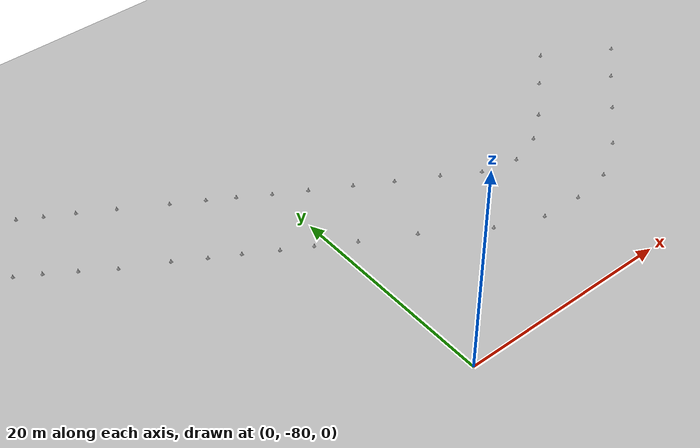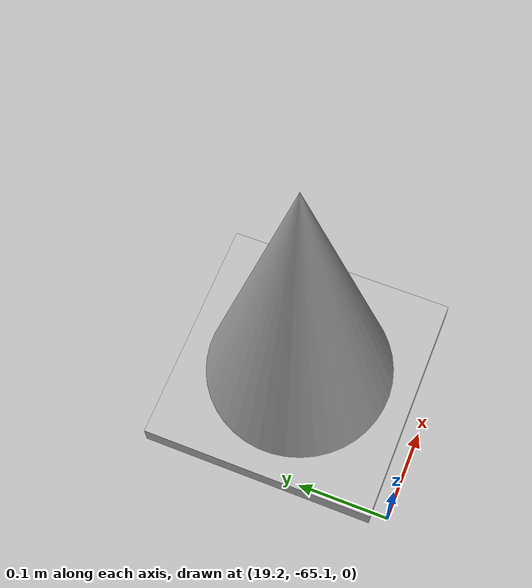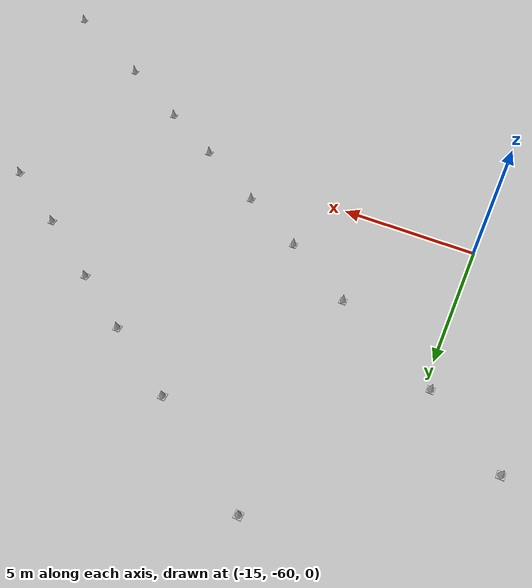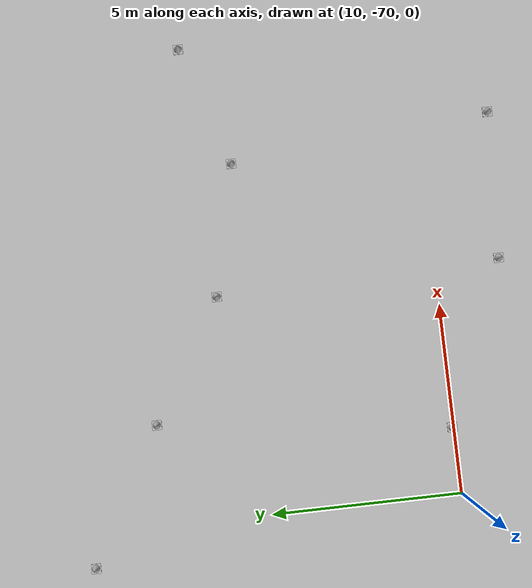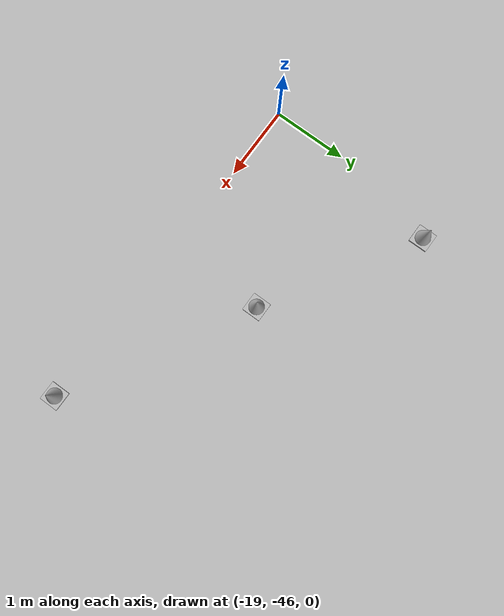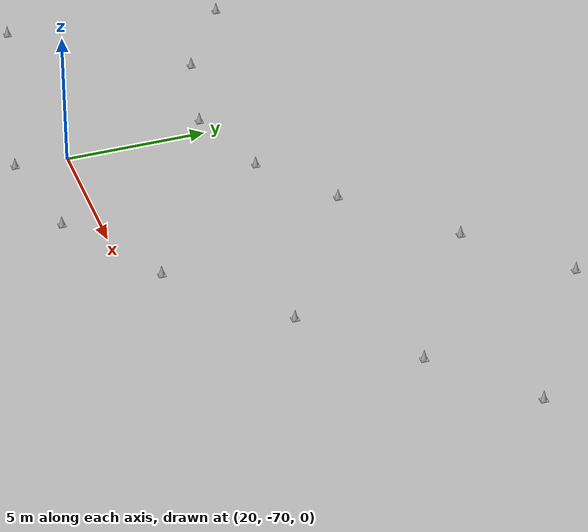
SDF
<sdf version='1.10'>
  <world name='phoenix_world'>
    <physics name='1ms' type='ignored'>
      <max_step_size>0.001</max_step_size>
      <real_time_factor>1</real_time_factor>
      <real_time_update_rate>1000</real_time_update_rate>
    </physics>
    <plugin name='ignition::gazebo::systems::Physics' filename='ignition-gazebo-physics-system'/>
    <plugin name='ignition::gazebo::systems::Sensors' filename='ignition-gazebo-sensors-system'>
      <render_engine>ogre2</render_engine>
    </plugin>
    <plugin name='ignition::gazebo::systems::UserCommands' filename='ignition-gazebo-user-commands-system'/>
    <plugin name='ignition::gazebo::systems::SceneBroadcaster' filename='ignition-gazebo-scene-broadcaster-system'/>
    <plugin name='ignition::gazebo::systems::Contact' filename='ignition-gazebo-contact-system'/>
    <plugin name='ignition::gazebo::systems::Imu' filename='libignition-gazebo-imu-system.so'/>
    <gravity>0 0 -9.8000000000000007</gravity>
    <magnetic_field>5.5644999999999998e-06 2.2875799999999999e-05 -4.2388400000000002e-05</magnetic_field>
    <atmosphere type='adiabatic'/>
    <scene>
      <ambient>0.400000006 0.400000006 0.400000006 1</ambient>
      <background>0.699999988 0.699999988 0.699999988 1</background>
      <shadows>true</shadows>
    </scene>
    <model name='ground_plane'>
      <static>true</static>
      <link name='link'>
        <visual name='visual'>
          <geometry>
            <mesh>
              <uri>../models/purdue_track/track.dae</uri>
            </mesh>
          </geometry>
        </visual>
        <collision name='collision'>
          <geometry>
            <mesh>
              <uri>../models/purdue_track/track.dae</uri>
            </mesh>
          </geometry>
        </collision>
        <pose>0 0 0 0 0 0</pose>
        <inertial>
          <pose>0 0 0 0 0 0</pose>
          <mass>1</mass>
          <inertia>
            <ixx>1</ixx>
            <ixy>0</ixy>
            <ixz>0</ixz>
            <iyy>1</iyy>
            <iyz>0</iyz>
            <izz>1</izz>
          </inertia>
        </inertial>
        <enable_wind>false</enable_wind>
      </link>
      <pose>-2.7981400000000001 -3.7684500000000001 0 0 0 0</pose>
      <static>true</static>
      <self_collide>false</self_collide>
    </model>

    <model name='cone1_1'>
      <static>true</static>
      <link name='cone'>
        <visual name='visual'>
          <geometry>
            <mesh>
              <uri>../models/isc_cone/cone.dae</uri>
            </mesh>
          </geometry>
        </visual>
        <collision name='collision'>
          <geometry>
            <mesh>
              <uri>../models/isc_cone/Cone.STL</uri>
            </mesh>
          </geometry>
        </collision>
        <pose>0 0 0 0 0 0</pose>
        <inertial>
          <pose>0 0 0 0 0 0</pose>
          <mass>1</mass>
          <inertia>
            <ixx>1</ixx>
            <ixy>0</ixy>
            <ixz>0</ixz>
            <iyy>1</iyy>
            <iyz>0</iyz>
            <izz>1</izz>
          </inertia>
        </inertial>
        <enable_wind>false</enable_wind>
      </link>
      <pose>-22.326957755397821 -49.315770699667269 -5.7995219328333481e-07 0.00024197632301167047 -2.4381442667617083e-05 -2.9497749163512602e-09</pose>
      <static>true</static>
      <self_collide>false</self_collide>
    </model>
    <model name='cone1_1_1'>
      <static>true</static>
      <link name='cone'>
        <visual name='visual'>
          <geometry>
            <mesh>
              <uri>../models/isc_cone/cone.dae</uri>
            </mesh>
          </geometry>
        </visual>
        <collision name='collision'>
          <geometry>
            <mesh>
              <uri>../models/isc_cone/Cone.STL</uri>
            </mesh>
          </geometry>
        </collision>
        <pose>0 0 0 0 0 0</pose>
        <inertial>
          <pose>0 0 0 0 0 0</pose>
          <mass>1</mass>
          <inertia>
            <ixx>1</ixx>
            <ixy>0</ixy>
            <ixz>0</ixz>
            <iyy>1</iyy>
            <iyz>0</iyz>
            <izz>1</izz>
          </inertia>
        </inertial>
        <enable_wind>false</enable_wind>
      </link>
      <pose>-20.295858248345464 -50.544541296695002 -5.7995173796751163e-07 0.00024197632196184537 -2.4381468218629035e-05 -2.9497716957905055e-09</pose>
      <static>true</static>
      <self_collide>false</self_collide>
    </model>
    <model name='cone1_1_2'>
      <static>true</static>
      <link name='cone'>
        <visual name='visual'>
          <geometry>
            <mesh>
              <uri>../models/isc_cone/cone.dae</uri>
            </mesh>
          </geometry>
        </visual>
        <collision name='collision'>
          <geometry>
            <mesh>
              <uri>../models/isc_cone/Cone.STL</uri>
            </mesh>
          </geometry>
        </collision>
        <pose>0 0 0 0 0 0</pose>
        <inertial>
          <pose>0 0 0 0 0 0</pose>
          <mass>1</mass>
          <inertia>
            <ixx>1</ixx>
            <ixy>0</ixy>
            <ixz>0</ixz>
            <iyy>1</iyy>
            <iyz>0</iyz>
            <izz>1</izz>
          </inertia>
        </inertial>
        <enable_wind>false</enable_wind>
      </link>
      <pose>-16.751596156728453 -44.731645937177554 -5.7995180211435265e-07 0.0002419634730398109 -2.4380173564774373e-05 -2.9494584336912146e-09</pose>
      <static>true</static>
      <self_collide>false</self_collide>
    </model>
    <model name='cone1_1_3'>
      <static>true</static>
      <link name='cone'>
        <visual name='visual'>
          <geometry>
            <mesh>
              <uri>../models/isc_cone/cone.dae</uri>
            </mesh>
          </geometry>
        </visual>
        <collision name='collision'>
          <geometry>
            <mesh>
              <uri>../models/isc_cone/Cone.STL</uri>
            </mesh>
          </geometry>
        </collision>
        <pose>0 0 0 0 0 0</pose>
        <inertial>
          <pose>0 0 0 0 0 0</pose>
          <mass>1</mass>
          <inertia>
            <ixx>1</ixx>
            <ixy>0</ixy>
            <ixz>0</ixz>
            <iyy>1</iyy>
            <iyz>0</iyz>
            <izz>1</izz>
          </inertia>
        </inertial>
        <enable_wind>false</enable_wind>
      </link>
      <pose>-18.713278951486892 -43.549923508957377 -5.7995173796750158e-07 0.00024197599175497154 -2.4381388539258807e-05 -2.9497639669117076e-09</pose>
      <static>true</static>
      <self_collide>false</self_collide>
    </model>
    <model name='cone1_1_4'>
      <static>true</static>
      <link name='cone'>
        <visual name='visual'>
          <geometry>
            <mesh>
              <uri>../models/isc_cone/cone.dae</uri>
            </mesh>
          </geometry>
        </visual>
        <collision name='collision'>
          <geometry>
            <mesh>
              <uri>../models/isc_cone/Cone.STL</uri>
            </mesh>
          </geometry>
        </collision>
        <pose>0 0 0 0 0 0</pose>
        <inertial>
          <pose>0 0 0 0 0 0</pose>
          <mass>1</mass>
          <inertia>
            <ixx>1</ixx>
            <ixy>0</ixy>
            <ixz>0</ixz>
            <iyy>1</iyy>
            <iyz>0</iyz>
            <izz>1</izz>
          </inertia>
        </inertial>
        <enable_wind>false</enable_wind>
      </link>
      <pose>-14.398600795201505 -46.07730908828033 -5.7995173796751301e-07 0.00024193289995391338 -2.4377046629485453e-05 -2.94871343879158e-09</pose>
      <static>true</static>
      <self_collide>false</self_collide>
    </model>
    <model name='cone1_1_5'>
      <static>true</static>
      <link name='cone'>
        <visual name='visual'>
          <geometry>
            <mesh>
              <uri>../models/isc_cone/cone.dae</uri>
            </mesh>
          </geometry>
        </visual>
        <collision name='collision'>
          <geometry>
            <mesh>
              <uri>../models/isc_cone/Cone.STL</uri>
            </mesh>
          </geometry>
        </collision>
        <pose>0 0 0 0 0 0</pose>
        <inertial>
          <pose>0 0 0 0 0 0</pose>
          <mass>1</mass>
          <inertia>
            <ixx>1</ixx>
            <ixy>0</ixy>
            <ixz>0</ixz>
            <iyy>1</iyy>
            <iyz>0</iyz>
            <izz>1</izz>
          </inertia>
        </inertial>
        <enable_wind>false</enable_wind>
      </link>
      <pose>-17.896386825318906 -52.138620335150684 -5.7995173796750846e-07 0.00024166517199787749 -2.4350070485522904e-05 -2.9421907341672725e-09</pose>
      <static>true</static>
      <self_collide>false</self_collide>
    </model>
    <model name='cone1_1_6'>
      <static>true</static>
      <link name='cone'>
        <visual name='visual'>
          <geometry>
            <mesh>
              <uri>../models/isc_cone/cone.dae</uri>
            </mesh>
          </geometry>
        </visual>
        <collision name='collision'>
          <geometry>
            <mesh>
              <uri>../models/isc_cone/Cone.STL</uri>
            </mesh>
          </geometry>
        </collision>
        <pose>0 0 0 0 0 0</pose>
        <inertial>
          <pose>0 0 0 0 0 0</pose>
          <mass>1</mass>
          <inertia>
            <ixx>1</ixx>
            <ixy>0</ixy>
            <ixz>0</ixz>
            <iyy>1</iyy>
            <iyz>0</iyz>
            <izz>1</izz>
          </inertia>
        </inertial>
        <enable_wind>false</enable_wind>
      </link>
      <pose>-15.209909946494735 -53.968692487746971 -5.7995189806059944e-07 0.00024197137623048148 -2.438092348116424e-05 -2.9496514368321094e-09</pose>
      <static>true</static>
      <self_collide>false</self_collide>
    </model>
    <model name='cone1_1_7'>
      <static>true</static>
      <link name='cone'>
        <visual name='visual'>
          <geometry>
            <mesh>
              <uri>../models/isc_cone/cone.dae</uri>
            </mesh>
          </geometry>
        </visual>
        <collision name='collision'>
          <geometry>
            <mesh>
              <uri>../models/isc_cone/Cone.STL</uri>
            </mesh>
          </geometry>
        </collision>
        <pose>0 0 0 0 0 0</pose>
        <inertial>
          <pose>0 0 0 0 0 0</pose>
          <mass>1</mass>
          <inertia>
            <ixx>1</ixx>
            <ixy>0</ixy>
            <ixz>0</ixz>
            <iyy>1</iyy>
            <iyz>0</iyz>
            <izz>1</izz>
          </inertia>
        </inertial>
        <enable_wind>false</enable_wind>
      </link>
      <pose>-11.446001310371228 -47.874446587906313 -5.7995173796751778e-07 0.00024173241720891348 -2.4356846081619054e-05 -2.9438283622137176e-09</pose>
      <static>true</static>
      <self_collide>false</self_collide>
    </model>
    <model name='cone1_1_8'>
      <static>true</static>
      <link name='cone'>
        <visual name='visual'>
          <geometry>
            <mesh>
              <uri>../models/isc_cone/cone.dae</uri>
            </mesh>
          </geometry>
        </visual>
        <collision name='collision'>
          <geometry>
            <mesh>
              <uri>../models/isc_cone/Cone.STL</uri>
            </mesh>
          </geometry>
        </collision>
        <pose>0 0 0 0 0 0</pose>
        <inertial>
          <pose>0 0 0 0 0 0</pose>
          <mass>1</mass>
          <inertia>
            <ixx>1</ixx>
            <ixy>0</ixy>
            <ixz>0</ixz>
            <iyy>1</iyy>
            <iyz>0</iyz>
            <izz>1</izz>
          </inertia>
        </inertial>
        <enable_wind>false</enable_wind>
      </link>
      <pose>-11.43636261647857 -56.01409628923372 -5.7425050995586344e-07 0.00024146300699668752 -2.4329700434305344e-05 -2.9372701375436011e-09</pose>
      <static>true</static>
      <self_collide>false</self_collide>
    </model>
    <model name='cone1_1_9'>
      <static>true</static>
      <link name='cone'>
        <visual name='visual'>
          <geometry>
            <mesh>
              <uri>../models/isc_cone/cone.dae</uri>
            </mesh>
          </geometry>
        </visual>
        <collision name='collision'>
          <geometry>
            <mesh>
              <uri>../models/isc_cone/Cone.STL</uri>
            </mesh>
          </geometry>
        </collision>
        <pose>0 0 0 0 0 0</pose>
        <inertial>
          <pose>0 0 0 0 0 0</pose>
          <mass>1</mass>
          <inertia>
            <ixx>1</ixx>
            <ixy>0</ixy>
            <ixz>0</ixz>
            <iyy>1</iyy>
            <iyz>0</iyz>
            <izz>1</izz>
          </inertia>
        </inertial>
        <enable_wind>false</enable_wind>
      </link>
      <pose>-7.6101526906305326 -50.204946808823472 -5.7995173796749967e-07 0.00024194138294985796 -2.4377901372199709e-05 -2.9489202296010717e-09</pose>
      <static>true</static>
      <self_collide>false</self_collide>
    </model>
    <model name='cone1_1_10'>
      <static>true</static>
      <link name='cone'>
        <visual name='visual'>
          <geometry>
            <mesh>
              <uri>../models/isc_cone/cone.dae</uri>
            </mesh>
          </geometry>
        </visual>
        <collision name='collision'>
          <geometry>
            <mesh>
              <uri>../models/isc_cone/Cone.STL</uri>
            </mesh>
          </geometry>
        </collision>
        <pose>0 0 0 0 0 0</pose>
        <inertial>
          <pose>0 0 0 0 0 0</pose>
          <mass>1</mass>
          <inertia>
            <ixx>1</ixx>
            <ixy>0</ixy>
            <ixz>0</ixz>
            <iyy>1</iyy>
            <iyz>0</iyz>
            <izz>1</izz>
          </inertia>
        </inertial>
        <enable_wind>false</enable_wind>
      </link>
      <pose>-8.8628436794376704 -57.612528638733359 -5.7995173796750518e-07 0.00024199330523536365 -2.4383081688677551e-05 -2.9501757360210986e-09</pose>
      <static>true</static>
      <self_collide>false</self_collide>
    </model>
    <model name='cone1_1_11'>
      <static>true</static>
      <link name='cone'>
        <visual name='visual'>
          <geometry>
            <mesh>
              <uri>../models/isc_cone/cone.dae</uri>
            </mesh>
          </geometry>
        </visual>
        <collision name='collision'>
          <geometry>
            <mesh>
              <uri>../models/isc_cone/Cone.STL</uri>
            </mesh>
          </geometry>
        </collision>
        <pose>0 0 0 0 0 0</pose>
        <inertial>
          <pose>0 0 0 0 0 0</pose>
          <mass>1</mass>
          <inertia>
            <ixx>1</ixx>
            <ixy>0</ixy>
            <ixz>0</ixz>
            <iyy>1</iyy>
            <iyz>0</iyz>
            <izz>1</izz>
          </inertia>
        </inertial>
        <enable_wind>false</enable_wind>
      </link>
      <pose>-4.9349946871815877 -51.779515411098451 -5.7995173796749512e-07 0.00024199841353231123 -2.4383596397211171e-05 -2.950300291340329e-09</pose>
      <static>true</static>
      <self_collide>false</self_collide>
    </model>
    <model name='cone1_1_12'>
      <static>true</static>
      <link name='cone'>
        <visual name='visual'>
          <geometry>
            <mesh>
              <uri>../models/isc_cone/cone.dae</uri>
            </mesh>
          </geometry>
        </visual>
        <collision name='collision'>
          <geometry>
            <mesh>
              <uri>../models/isc_cone/Cone.STL</uri>
            </mesh>
          </geometry>
        </collision>
        <pose>0 0 0 0 0 0</pose>
        <inertial>
          <pose>0 0 0 0 0 0</pose>
          <mass>1</mass>
          <inertia>
            <ixx>1</ixx>
            <ixy>0</ixy>
            <ixz>0</ixz>
            <iyy>1</iyy>
            <iyz>0</iyz>
            <izz>1</izz>
          </inertia>
        </inertial>
        <enable_wind>false</enable_wind>
      </link>
      <pose>-6.4411758748258201 -59.014486770494749 -5.799518917522807e-07 0.00024196130044599982 -2.4379856907821828e-05 -2.9493954248677602e-09</pose>
      <static>true</static>
      <self_collide>false</self_collide>
    </model>
    <model name='cone1_1_13'>
      <static>true</static>
      <link name='cone'>
        <visual name='visual'>
          <geometry>
            <mesh>
              <uri>../models/isc_cone/cone.dae</uri>
            </mesh>
          </geometry>
        </visual>
        <collision name='collision'>
          <geometry>
            <mesh>
              <uri>../models/isc_cone/Cone.STL</uri>
            </mesh>
          </geometry>
        </collision>
        <pose>0 0 0 0 0 0</pose>
        <inertial>
          <pose>0 0 0 0 0 0</pose>
          <mass>1</mass>
          <inertia>
            <ixx>1</ixx>
            <ixy>0</ixy>
            <ixz>0</ixz>
            <iyy>1</iyy>
            <iyz>0</iyz>
            <izz>1</izz>
          </inertia>
        </inertial>
        <enable_wind>false</enable_wind>
      </link>
      <pose>-2.7114452078953208 -53.162480893006119 -5.7995173796749925e-07 0.00024195100302887111 -2.4378819347060389e-05 -2.9491443847194749e-09</pose>
      <static>true</static>
      <self_collide>false</self_collide>
    </model>
    <model name='cone1_1_9_1'>
      <static>true</static>
      <link name='cone'>
        <visual name='visual'>
          <geometry>
            <mesh>
              <uri>../models/isc_cone/cone.dae</uri>
            </mesh>
          </geometry>
        </visual>
        <collision name='collision'>
          <geometry>
            <mesh>
              <uri>../models/isc_cone/Cone.STL</uri>
            </mesh>
          </geometry>
        </collision>
        <pose>0 0 0 0 0 0</pose>
        <inertial>
          <pose>0 0 0 0 0 0</pose>
          <mass>1</mass>
          <inertia>
            <ixx>1</ixx>
            <ixy>0</ixy>
            <ixz>0</ixz>
            <iyy>1</iyy>
            <iyz>0</iyz>
            <izz>1</izz>
          </inertia>
        </inertial>
        <enable_wind>false</enable_wind>
      </link>
      <pose>-3.7310455876308257 -60.648891132106549 -5.799587450912316e-07 0.00024173267857290149 -2.4356870801595964e-05 -2.9438353502598987e-09</pose>
      <static>true</static>
      <self_collide>false</self_collide>
    </model>
    <model name='cone1_1_9_2'>
      <static>true</static>
      <link name='cone'>
        <visual name='visual'>
          <geometry>
            <mesh>
              <uri>../models/isc_cone/cone.dae</uri>
            </mesh>
          </geometry>
        </visual>
        <collision name='collision'>
          <geometry>
            <mesh>
              <uri>../models/isc_cone/Cone.STL</uri>
            </mesh>
          </geometry>
        </collision>
        <pose>0 0 0 0 0 0</pose>
        <inertial>
          <pose>0 0 0 0 0 0</pose>
          <mass>1</mass>
          <inertia>
            <ixx>1</ixx>
            <ixy>0</ixy>
            <ixz>0</ixz>
            <iyy>1</iyy>
            <iyz>0</iyz>
            <izz>1</izz>
          </inertia>
        </inertial>
        <enable_wind>false</enable_wind>
      </link>
      <pose>-0.090881347329379469 -54.816196847756203 -5.7995174673637321e-07 0.00024186466529011036 -2.4370169720772987e-05 -2.9470509619196833e-09</pose>
      <static>true</static>
      <self_collide>false</self_collide>
    </model>
    <model name='cone1_1_9_2_1'>
      <static>true</static>
      <link name='cone'>
        <visual name='visual'>
          <geometry>
            <mesh>
              <uri>../models/isc_cone/cone.dae</uri>
            </mesh>
          </geometry>
        </visual>
        <collision name='collision'>
          <geometry>
            <mesh>
              <uri>../models/isc_cone/Cone.STL</uri>
            </mesh>
          </geometry>
        </collision>
        <pose>0 0 0 0 0 0</pose>
        <inertial>
          <pose>0 0 0 0 0 0</pose>
          <mass>1</mass>
          <inertia>
            <ixx>1</ixx>
            <ixy>0</ixy>
            <ixz>0</ixz>
            <iyy>1</iyy>
            <iyz>0</iyz>
            <izz>1</izz>
          </inertia>
        </inertial>
        <enable_wind>false</enable_wind>
      </link>
      <pose>2.6135617173211667 -56.408569889024207 -5.6860652234803979e-07 0.00024173000556106976 -2.4356601470188459e-05 -2.943770245416436e-09</pose>
      <static>true</static>
      <self_collide>false</self_collide>
    </model>
    <model name='cone1_1_9_2_2'>
      <static>true</static>
      <link name='cone'>
        <visual name='visual'>
          <geometry>
            <mesh>
              <uri>../models/isc_cone/cone.dae</uri>
            </mesh>
          </geometry>
        </visual>
        <collision name='collision'>
          <geometry>
            <mesh>
              <uri>../models/isc_cone/Cone.STL</uri>
            </mesh>
          </geometry>
        </collision>
        <pose>0 0 0 0 0 0</pose>
        <inertial>
          <pose>0 0 0 0 0 0</pose>
          <mass>1</mass>
          <inertia>
            <ixx>1</ixx>
            <ixy>0</ixy>
            <ixz>0</ixz>
            <iyy>1</iyy>
            <iyz>0</iyz>
            <izz>1</izz>
          </inertia>
        </inertial>
        <enable_wind>false</enable_wind>
      </link>
      <pose>-1.2519699978157917 -62.072320662319733 -5.6860652234803979e-07 0.00024173000556106976 -2.4356601470188459e-05 -2.943770245416436e-09</pose>
      <static>true</static>
      <self_collide>false</self_collide>
    </model>
    <model name='cone1_1_9_2_3'>
      <static>true</static>
      <link name='cone'>
        <visual name='visual'>
          <geometry>
            <mesh>
              <uri>../models/isc_cone/cone.dae</uri>
            </mesh>
          </geometry>
        </visual>
        <collision name='collision'>
          <geometry>
            <mesh>
              <uri>../models/isc_cone/Cone.STL</uri>
            </mesh>
          </geometry>
        </collision>
        <pose>0 0 0 0 0 0</pose>
        <inertial>
          <pose>0 0 0 0 0 0</pose>
          <mass>1</mass>
          <inertia>
            <ixx>1</ixx>
            <ixy>0</ixy>
            <ixz>0</ixz>
            <iyy>1</iyy>
            <iyz>0</iyz>
            <izz>1</izz>
          </inertia>
        </inertial>
        <enable_wind>false</enable_wind>
      </link>
      <pose>1.890919003692785 -63.982723929555114 -5.6860652234803979e-07 0.00024173000556106976 -2.4356601470188459e-05 -2.943770245416436e-09</pose>
      <static>true</static>
      <self_collide>false</self_collide>
    </model>
    <model name='cone1_1_9_2_4'>
      <static>true</static>
      <link name='cone'>
        <visual name='visual'>
          <geometry>
            <mesh>
              <uri>../models/isc_cone/cone.dae</uri>
            </mesh>
          </geometry>
        </visual>
        <collision name='collision'>
          <geometry>
            <mesh>
              <uri>../models/isc_cone/Cone.STL</uri>
            </mesh>
          </geometry>
        </collision>
        <pose>0 0 0 0 0 0</pose>
        <inertial>
          <pose>0 0 0 0 0 0</pose>
          <mass>1</mass>
          <inertia>
            <ixx>1</ixx>
            <ixy>0</ixy>
            <ixz>0</ixz>
            <iyy>1</iyy>
            <iyz>0</iyz>
            <izz>1</izz>
          </inertia>
        </inertial>
        <enable_wind>false</enable_wind>
      </link>
      <pose>5.9795178316178195 -58.397853833364294 -5.6860652234803979e-07 0.00024173000556106976 -2.4356601470188459e-05 -2.943770245416436e-09</pose>
      <static>true</static>
      <self_collide>false</self_collide>
    </model>
    <model name='cone1_1_9_2_5'>
      <static>true</static>
      <link name='cone'>
        <visual name='visual'>
          <geometry>
            <mesh>
              <uri>../models/isc_cone/cone.dae</uri>
            </mesh>
          </geometry>
        </visual>
        <collision name='collision'>
          <geometry>
            <mesh>
              <uri>../models/isc_cone/Cone.STL</uri>
            </mesh>
          </geometry>
        </collision>
        <pose>0 0 0 0 0 0</pose>
        <inertial>
          <pose>0 0 0 0 0 0</pose>
          <mass>1</mass>
          <inertia>
            <ixx>1</ixx>
            <ixy>0</ixy>
            <ixz>0</ixz>
            <iyy>1</iyy>
            <iyz>0</iyz>
            <izz>1</izz>
          </inertia>
        </inertial>
        <enable_wind>false</enable_wind>
      </link>
      <pose>6.3356113881105891 -66.455551081353221 -5.6860652234803979e-07 0.00024173000556106976 -2.4356601470188459e-05 -2.943770245416436e-09</pose>
      <static>true</static>
      <self_collide>false</self_collide>
    </model>
    <model name='cone1_1_9_2_6'>
      <static>true</static>
      <link name='cone'>
        <visual name='visual'>
          <geometry>
            <mesh>
              <uri>../models/isc_cone/cone.dae</uri>
            </mesh>
          </geometry>
        </visual>
        <collision name='collision'>
          <geometry>
            <mesh>
              <uri>../models/isc_cone/Cone.STL</uri>
            </mesh>
          </geometry>
        </collision>
        <pose>0 0 0 0 0 0</pose>
        <inertial>
          <pose>0 0 0 0 0 0</pose>
          <mass>1</mass>
          <inertia>
            <ixx>1</ixx>
            <ixy>0</ixy>
            <ixz>0</ixz>
            <iyy>1</iyy>
            <iyz>0</iyz>
            <izz>1</izz>
          </inertia>
        </inertial>
        <enable_wind>false</enable_wind>
      </link>
      <pose>9.1344294413298073 -60.255099767382127 -5.6860652234803979e-07 0.00024173000556106976 -2.4356601470188459e-05 -2.943770245416436e-09</pose>
      <static>true</static>
      <self_collide>false</self_collide>
    </model>
    <model name='cone1_1_9_2_7'>
      <static>true</static>
      <link name='cone'>
        <visual name='visual'>
          <geometry>
            <mesh>
              <uri>../models/isc_cone/cone.dae</uri>
            </mesh>
          </geometry>
        </visual>
        <collision name='collision'>
          <geometry>
            <mesh>
              <uri>../models/isc_cone/Cone.STL</uri>
            </mesh>
          </geometry>
        </collision>
        <pose>0 0 0 0 0 0</pose>
        <inertial>
          <pose>0 0 0 0 0 0</pose>
          <mass>1</mass>
          <inertia>
            <ixx>1</ixx>
            <ixy>0</ixy>
            <ixz>0</ixz>
            <iyy>1</iyy>
            <iyz>0</iyz>
            <izz>1</izz>
          </inertia>
        </inertial>
        <enable_wind>false</enable_wind>
      </link>
      <pose>11.761074856773009 -69.956706171684957 -5.7995173815237033e-07 0.00024179930658812398 -2.4363584208885428e-05 -2.9454583989316807e-09</pose>
      <static>true</static>
      <self_collide>false</self_collide>
    </model>
    <model name='cone1_1_9_2_8'>
      <static>true</static>
      <link name='cone'>
        <visual name='visual'>
          <geometry>
            <mesh>
              <uri>../models/isc_cone/cone.dae</uri>
            </mesh>
          </geometry>
        </visual>
        <collision name='collision'>
          <geometry>
            <mesh>
              <uri>../models/isc_cone/Cone.STL</uri>
            </mesh>
          </geometry>
        </collision>
        <pose>0 0 0 0 0 0</pose>
        <inertial>
          <pose>0 0 0 0 0 0</pose>
          <mass>1</mass>
          <inertia>
            <ixx>1</ixx>
            <ixy>0</ixy>
            <ixz>0</ixz>
            <iyy>1</iyy>
            <iyz>0</iyz>
            <izz>1</izz>
          </inertia>
        </inertial>
        <enable_wind>false</enable_wind>
      </link>
      <pose>12.680889870267311 -62.244496285397474 -5.6860652234803979e-07 0.00024173000556106976 -2.4356601470188459e-05 -2.943770245416436e-09</pose>
      <static>true</static>
      <self_collide>false</self_collide>
    </model>
    <model name='cone1_1_9_2_9'>
      <static>true</static>
      <link name='cone'>
        <visual name='visual'>
          <geometry>
            <mesh>
              <uri>../models/isc_cone/cone.dae</uri>
            </mesh>
          </geometry>
        </visual>
        <collision name='collision'>
          <geometry>
            <mesh>
              <uri>../models/isc_cone/Cone.STL</uri>
            </mesh>
          </geometry>
        </collision>
        <pose>0 0 0 0 0 0</pose>
        <inertial>
          <pose>0 0 0 0 0 0</pose>
          <mass>1</mass>
          <inertia>
            <ixx>1</ixx>
            <ixy>0</ixy>
            <ixz>0</ixz>
            <iyy>1</iyy>
            <iyz>0</iyz>
            <izz>1</izz>
          </inertia>
        </inertial>
        <enable_wind>false</enable_wind>
      </link>
      <pose>16.053462987106172 -71.698614564502691 -5.7995173796751153e-07 0.00024179916616052615 -2.4363570059467106e-05 -2.9454549776656312e-09</pose>
      <static>true</static>
      <self_collide>false</self_collide>
    </model>
    <model name='cone1_1_9_2_10'>
      <static>true</static>
      <link name='cone'>
        <visual name='visual'>
          <geometry>
            <mesh>
              <uri>../models/isc_cone/cone.dae</uri>
            </mesh>
          </geometry>
        </visual>
        <collision name='collision'>
          <geometry>
            <mesh>
              <uri>../models/isc_cone/Cone.STL</uri>
            </mesh>
          </geometry>
        </collision>
        <pose>0 0 0 0 0 0</pose>
        <inertial>
          <pose>0 0 0 0 0 0</pose>
          <mass>1</mass>
          <inertia>
            <ixx>1</ixx>
            <ixy>0</ixy>
            <ixz>0</ixz>
            <iyy>1</iyy>
            <iyz>0</iyz>
            <izz>1</izz>
          </inertia>
        </inertial>
        <enable_wind>false</enable_wind>
      </link>
      <pose>15.860285961595574 -64.184163418532009 -5.6860652234803979e-07 0.00024173000556106976 -2.4356601470188459e-05 -2.943770245416436e-09</pose>
      <static>true</static>
      <self_collide>false</self_collide>
    </model>
    <model name='cone1_1_9_2_11'>
      <static>true</static>
      <link name='cone'>
        <visual name='visual'>
          <geometry>
            <mesh>
              <uri>../models/isc_cone/cone.dae</uri>
            </mesh>
          </geometry>
        </visual>
        <collision name='collision'>
          <geometry>
            <mesh>
              <uri>../models/isc_cone/Cone.STL</uri>
            </mesh>
          </geometry>
        </collision>
        <pose>0 0 0 0 0 0</pose>
        <inertial>
          <pose>0 0 0 0 0 0</pose>
          <mass>1</mass>
          <inertia>
            <ixx>1</ixx>
            <ixy>0</ixy>
            <ixz>0</ixz>
            <iyy>1</iyy>
            <iyz>0</iyz>
            <izz>1</izz>
          </inertia>
        </inertial>
        <enable_wind>false</enable_wind>
      </link>
      <pose>19.935752503779767 -71.8603635316789 -5.6860652234803979e-07 0.00024173000556106976 -2.4356601470188459e-05 -2.943770245416436e-09</pose>
      <static>true</static>
      <self_collide>false</self_collide>
    </model>
    <model name='cone1_1_9_2_12'>
      <static>true</static>
      <link name='cone'>
        <visual name='visual'>
          <geometry>
            <mesh>
              <uri>../models/isc_cone/cone.dae</uri>
            </mesh>
          </geometry>
        </visual>
        <collision name='collision'>
          <geometry>
            <mesh>
              <uri>../models/isc_cone/Cone.STL</uri>
            </mesh>
          </geometry>
        </collision>
        <pose>0 0 0 0 0 0</pose>
        <inertial>
          <pose>0 0 0 0 0 0</pose>
          <mass>1</mass>
          <inertia>
            <ixx>1</ixx>
            <ixy>0</ixy>
            <ixz>0</ixz>
            <iyy>1</iyy>
            <iyz>0</iyz>
            <izz>1</izz>
          </inertia>
        </inertial>
        <enable_wind>false</enable_wind>
      </link>
      <pose>19.323459808803886 -64.955599292057116 -5.6860652234803979e-07 0.00024173000556106976 -2.4356601470188459e-05 -2.943770245416436e-09</pose>
      <static>true</static>
      <self_collide>false</self_collide>
    </model>
    <model name='cone1_1_9_2_13'>
      <static>true</static>
      <link name='cone'>
        <visual name='visual'>
          <geometry>
            <mesh>
              <uri>../models/isc_cone/cone.dae</uri>
            </mesh>
          </geometry>
        </visual>
        <collision name='collision'>
          <geometry>
            <mesh>
              <uri>../models/isc_cone/Cone.STL</uri>
            </mesh>
          </geometry>
        </collision>
        <pose>0 0 0 0 0 0</pose>
        <inertial>
          <pose>0 0 0 0 0 0</pose>
          <mass>1</mass>
          <inertia>
            <ixx>1</ixx>
            <ixy>0</ixy>
            <ixz>0</ixz>
            <iyy>1</iyy>
            <iyz>0</iyz>
            <izz>1</izz>
          </inertia>
        </inertial>
        <enable_wind>false</enable_wind>
      </link>
      <pose>23.774156693125299 -71.242494048119156 -5.6860652234803979e-07 0.00024173000556106976 -2.4356601470188459e-05 -2.943770245416436e-09</pose>
      <static>true</static>
      <self_collide>false</self_collide>
    </model>
    <model name='cone1_1_9_2_14'>
      <static>true</static>
      <link name='cone'>
        <visual name='visual'>
          <geometry>
            <mesh>
              <uri>../models/isc_cone/cone.dae</uri>
            </mesh>
          </geometry>
        </visual>
        <collision name='collision'>
          <geometry>
            <mesh>
              <uri>../models/isc_cone/Cone.STL</uri>
            </mesh>
          </geometry>
        </collision>
        <pose>0 0 0 0 0 0</pose>
        <inertial>
          <pose>0 0 0 0 0 0</pose>
          <mass>1</mass>
          <inertia>
            <ixx>1</ixx>
            <ixy>0</ixy>
            <ixz>0</ixz>
            <iyy>1</iyy>
            <iyz>0</iyz>
            <izz>1</izz>
          </inertia>
        </inertial>
        <enable_wind>false</enable_wind>
      </link>
      <pose>22.505763331365866 -63.89342964196004 -5.6860652234803979e-07 0.00024173000556106976 -2.4356601470188459e-05 -2.943770245416436e-09</pose>
      <static>true</static>
      <self_collide>false</self_collide>
    </model>
    <model name='cone1_1_9_2_15'>
      <static>true</static>
      <link name='cone'>
        <visual name='visual'>
          <geometry>
            <mesh>
              <uri>../models/isc_cone/cone.dae</uri>
            </mesh>
          </geometry>
        </visual>
        <collision name='collision'>
          <geometry>
            <mesh>
              <uri>../models/isc_cone/Cone.STL</uri>
            </mesh>
          </geometry>
        </collision>
        <pose>0 0 0 0 0 0</pose>
        <inertial>
          <pose>0 0 0 0 0 0</pose>
          <mass>1</mass>
          <inertia>
            <ixx>1</ixx>
            <ixy>0</ixy>
            <ixz>0</ixz>
            <iyy>1</iyy>
            <iyz>0</iyz>
            <izz>1</izz>
          </inertia>
        </inertial>
        <enable_wind>false</enable_wind>
      </link>
      <pose>27.557893733895423 -68.837686922994081 -5.6860652234803979e-07 0.00024173000556106976 -2.4356601470188459e-05 -2.943770245416436e-09</pose>
      <static>true</static>
      <self_collide>false</self_collide>
    </model>
    <model name='cone1_1_9_2_16'>
      <static>true</static>
      <link name='cone'>
        <visual name='visual'>
          <geometry>
            <mesh>
              <uri>../models/isc_cone/cone.dae</uri>
            </mesh>
          </geometry>
        </visual>
        <collision name='collision'>
          <geometry>
            <mesh>
              <uri>../models/isc_cone/Cone.STL</uri>
            </mesh>
          </geometry>
        </collision>
        <pose>0 0 0 0 0 0</pose>
        <inertial>
          <pose>0 0 0 0 0 0</pose>
          <mass>1</mass>
          <inertia>
            <ixx>1</ixx>
            <ixy>0</ixy>
            <ixz>0</ixz>
            <iyy>1</iyy>
            <iyz>0</iyz>
            <izz>1</izz>
          </inertia>
        </inertial>
        <enable_wind>false</enable_wind>
      </link>
      <pose>25.253733197698914 -61.809822368031185 -5.6860652234803979e-07 0.00024173000556106976 -2.4356601470188459e-05 -2.943770245416436e-09</pose>
      <static>true</static>
      <self_collide>false</self_collide>
    </model>
    <model name='cone1_1_9_2_17'>
      <static>true</static>
      <link name='cone'>
        <visual name='visual'>
          <geometry>
            <mesh>
              <uri>../models/isc_cone/cone.dae</uri>
            </mesh>
          </geometry>
        </visual>
        <collision name='collision'>
          <geometry>
            <mesh>
              <uri>../models/isc_cone/Cone.STL</uri>
            </mesh>
          </geometry>
        </collision>
        <pose>0 0 0 0 0 0</pose>
        <inertial>
          <pose>0 0 0 0 0 0</pose>
          <mass>1</mass>
          <inertia>
            <ixx>1</ixx>
            <ixy>0</ixy>
            <ixz>0</ixz>
            <iyy>1</iyy>
            <iyz>0</iyz>
            <izz>1</izz>
          </inertia>
        </inertial>
        <enable_wind>false</enable_wind>
      </link>
      <pose>31.26124022570081 -65.376566252307455 -5.6860652234803979e-07 0.00024173000556106976 -2.4356601470188459e-05 -2.943770245416436e-09</pose>
      <static>true</static>
      <self_collide>false</self_collide>
    </model>
    <model name='cone1_1_9_2_18'>
      <static>true</static>
      <link name='cone'>
        <visual name='visual'>
          <geometry>
            <mesh>
              <uri>../models/isc_cone/cone.dae</uri>
            </mesh>
          </geometry>
        </visual>
        <collision name='collision'>
          <geometry>
            <mesh>
              <uri>../models/isc_cone/Cone.STL</uri>
            </mesh>
          </geometry>
        </collision>
        <pose>0 0 0 0 0 0</pose>
        <inertial>
          <pose>0 0 0 0 0 0</pose>
          <mass>1</mass>
          <inertia>
            <ixx>1</ixx>
            <ixy>0</ixy>
            <ixz>0</ixz>
            <iyy>1</iyy>
            <iyz>0</iyz>
            <izz>1</izz>
          </inertia>
        </inertial>
        <enable_wind>false</enable_wind>
      </link>
      <pose>28.614498155611741 -58.563923697570551 -5.6860652234803979e-07 0.00024173000556106976 -2.4356601470188459e-05 -2.943770245416436e-09</pose>
      <static>true</static>
      <self_collide>false</self_collide>
    </model>
    <model name='cone1_1_9_2_19'>
      <static>true</static>
      <link name='cone'>
        <visual name='visual'>
          <geometry>
            <mesh>
              <uri>../models/isc_cone/cone.dae</uri>
            </mesh>
          </geometry>
        </visual>
        <collision name='collision'>
          <geometry>
            <mesh>
              <uri>../models/isc_cone/Cone.STL</uri>
            </mesh>
          </geometry>
        </collision>
        <pose>0 0 0 0 0 0</pose>
        <inertial>
          <pose>0 0 0 0 0 0</pose>
          <mass>1</mass>
          <inertia>
            <ixx>1</ixx>
            <ixy>0</ixy>
            <ixz>0</ixz>
            <iyy>1</iyy>
            <iyz>0</iyz>
            <izz>1</izz>
          </inertia>
        </inertial>
        <enable_wind>false</enable_wind>
      </link>
      <pose>34.629696553483107 -62.083660249421868 -5.6860652234803979e-07 0.00024173000556106976 -2.4356601470188459e-05 -2.943770245416436e-09</pose>
      <static>true</static>
      <self_collide>false</self_collide>
    </model>
    <model name='cone1_1_9_2_20'>
      <static>true</static>
      <link name='cone'>
        <visual name='visual'>
          <geometry>
            <mesh>
              <uri>../models/isc_cone/cone.dae</uri>
            </mesh>
          </geometry>
        </visual>
        <collision name='collision'>
          <geometry>
            <mesh>
              <uri>../models/isc_cone/Cone.STL</uri>
            </mesh>
          </geometry>
        </collision>
        <pose>0 0 0 0 0 0</pose>
        <inertial>
          <pose>0 0 0 0 0 0</pose>
          <mass>1</mass>
          <inertia>
            <ixx>1</ixx>
            <ixy>0</ixy>
            <ixz>0</ixz>
            <iyy>1</iyy>
            <iyz>0</iyz>
            <izz>1</izz>
          </inertia>
        </inertial>
        <enable_wind>false</enable_wind>
      </link>
      <pose>31.741580557014316 -55.615242640323899 -5.7995184724152168e-07 0.00024186629137936891 -2.4370332682308024e-05 -2.9471031697546332e-09</pose>
      <static>true</static>
      <self_collide>false</self_collide>
    </model>
    <model name='cone1_1_9_2_21'>
      <static>true</static>
      <link name='cone'>
        <visual name='visual'>
          <geometry>
            <mesh>
              <uri>../models/isc_cone/cone.dae</uri>
            </mesh>
          </geometry>
        </visual>
        <collision name='collision'>
          <geometry>
            <mesh>
              <uri>../models/isc_cone/Cone.STL</uri>
            </mesh>
          </geometry>
        </collision>
        <pose>0 0 0 0 0 0</pose>
        <inertial>
          <pose>0 0 0 0 0 0</pose>
          <mass>1</mass>
          <inertia>
            <ixx>1</ixx>
            <ixy>0</ixy>
            <ixz>0</ixz>
            <iyy>1</iyy>
            <iyz>0</iyz>
            <izz>1</izz>
          </inertia>
        </inertial>
        <enable_wind>false</enable_wind>
      </link>
      <pose>37.820010520927518 -59.170486897153467 -5.630184267623921e-07 0.00024186424495911693 -2.4370124912766981e-05 -2.9470559975156192e-09</pose>
      <static>true</static>
      <self_collide>false</self_collide>
    </model>
    <light name='sun' type='directional'>
      <pose>0 0 10 0 0 0</pose>
      <cast_shadows>true</cast_shadows>
      <intensity>1</intensity>
      <direction>-0.5 0.10000000000000001 -0.90000000000000002</direction>
      <diffuse>0.800000012 0.800000012 0.800000012 1</diffuse>
      <specular>0.200000003 0.200000003 0.200000003 1</specular>
      <attenuation>
        <range>1000</range>
        <linear>0.01</linear>
        <constant>0.90000000000000002</constant>
        <quadratic>0.001</quadratic>
      </attenuation>
      <spot>
        <inner_angle>0</inner_angle>
        <outer_angle>0</outer_angle>
        <falloff>0</falloff>
      </spot>
    </light>
  </world>
</sdf>
